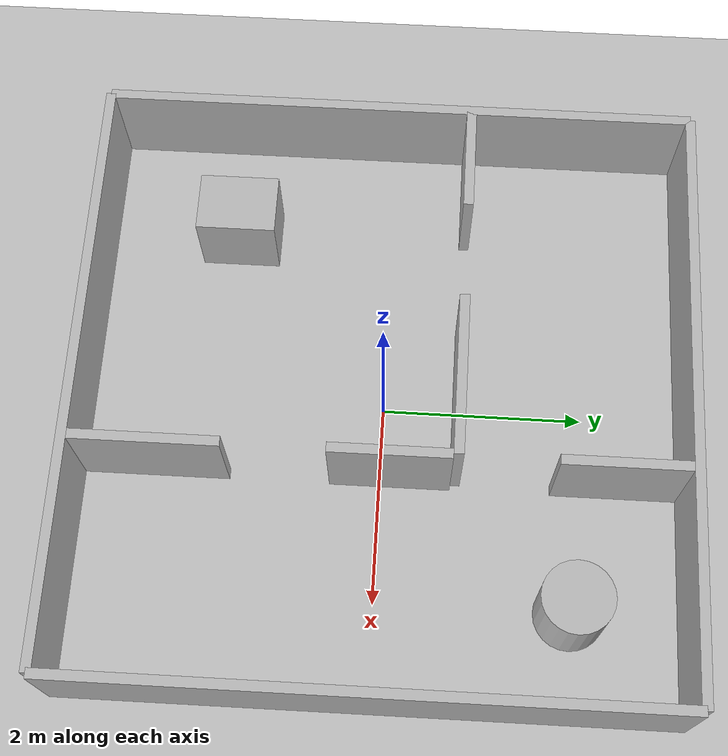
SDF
<?xml version="1.0"?>
<sdf version="1.9">
  <world name="voice_nav_house_world">
    <plugin filename="gz-sim-physics-system" name="gz::sim::systems::Physics" />
    <plugin filename="gz-sim-user-commands-system" name="gz::sim::systems::UserCommands" />
    <plugin filename="gz-sim-scene-broadcaster-system" name="gz::sim::systems::SceneBroadcaster" />
    <plugin filename="gz-sim-sensors-system" name="gz::sim::systems::Sensors">
      <render_engine>ogre2</render_engine>
    </plugin>
    <physics name="default_physics" type="ode">
      <max_step_size>0.001</max_step_size>
      <real_time_update_rate>1000</real_time_update_rate>
    </physics>
    <gravity>0 0 -9.8</gravity>
    <light name="sun" type="directional">
      <cast_shadows>true</cast_shadows><pose>0 0 10 0 0 0</pose>
      <diffuse>0.8 0.8 0.8 1</diffuse><specular>0.2 0.2 0.2 1</specular>
      <attenuation><range>1000</range><constant>0.9</constant><linear>0.01</linear><quadratic>0.001</quadratic></attenuation>
      <direction>-0.5 0.1 -0.9</direction>
    </light>
    <model name="ground"><static>true</static><link name="ground_link">
      <collision name="ground_collision"><geometry><plane><normal>0 0 1</normal><size>8 8</size></plane></geometry></collision>
      <visual name="ground_visual"><geometry><plane><normal>0 0 1</normal><size>8 8</size></plane></geometry><material><ambient>0.65 0.65 0.65 1</ambient><diffuse>0.75 0.75 0.75 1</diffuse></material></visual>
    </link></model>
    <model name="south"><static>true</static><pose>0 -3 0.5 0 0 0</pose><link name="south_link">
      <collision name="south_collision"><geometry><box><size>6.0 0.10 1.0</size></box></geometry></collision>
      <visual name="south_visual"><geometry><box><size>6.0 0.10 1.0</size></box></geometry></visual>
    </link></model>
    <model name="north"><static>true</static><pose>0 3 0.5 0 0 0</pose><link name="north_link">
      <collision name="north_collision"><geometry><box><size>6.0 0.10 1.0</size></box></geometry></collision>
      <visual name="north_visual"><geometry><box><size>6.0 0.10 1.0</size></box></geometry></visual>
    </link></model>
    <model name="west"><static>true</static><pose>-3 0 0.5 0 0 0</pose><link name="west_link">
      <collision name="west_collision"><geometry><box><size>0.10 6.0 1.0</size></box></geometry></collision>
      <visual name="west_visual"><geometry><box><size>0.10 6.0 1.0</size></box></geometry></visual>
    </link></model>
    <model name="east"><static>true</static><pose>3 0 0.5 0 0 0</pose><link name="east_link">
      <collision name="east_collision"><geometry><box><size>0.10 6.0 1.0</size></box></geometry></collision>
      <visual name="east_visual"><geometry><box><size>0.10 6.0 1.0</size></box></geometry></visual>
    </link></model>
    <model name="inner_v_lower"><static>true</static><pose>0.75 -2.25 0.5 0 0 0</pose><link name="inner_v_lower_link">
      <collision name="inner_v_lower_collision"><geometry><box><size>0.10 1.50 1.0</size></box></geometry></collision>
      <visual name="inner_v_lower_visual"><geometry><box><size>0.10 1.50 1.0</size></box></geometry></visual>
    </link></model>
    <model name="inner_v_middle"><static>true</static><pose>0.75 0.10 0.5 0 0 0</pose><link name="inner_v_middle_link">
      <collision name="inner_v_middle_collision"><geometry><box><size>0.10 1.20 1.0</size></box></geometry></collision>
      <visual name="inner_v_middle_visual"><geometry><box><size>0.10 1.20 1.0</size></box></geometry></visual>
    </link></model>
    <model name="inner_v_upper"><static>true</static><pose>0.75 2.35 0.5 0 0 0</pose><link name="inner_v_upper_link">
      <collision name="inner_v_upper_collision"><geometry><box><size>0.10 1.30 1.0</size></box></geometry></collision>
      <visual name="inner_v_upper_visual"><geometry><box><size>0.10 1.30 1.0</size></box></geometry></visual>
    </link></model>
    <model name="inner_h_west"><static>true</static><pose>-2.45 0.75 0.5 0 0 0</pose><link name="inner_h_west_link">
      <collision name="inner_h_west_collision"><geometry><box><size>1.10 0.10 1.0</size></box></geometry></collision>
      <visual name="inner_h_west_visual"><geometry><box><size>1.10 0.10 1.0</size></box></geometry></visual>
    </link></model>
    <model name="inner_h_east"><static>true</static><pose>-0.075 0.75 0.5 0 0 0</pose><link name="inner_h_east_link">
      <collision name="inner_h_east_collision"><geometry><box><size>1.65 0.10 1.0</size></box></geometry></collision>
      <visual name="inner_h_east_visual"><geometry><box><size>1.65 0.10 1.0</size></box></geometry></visual>
    </link></model>
    <model name="lower_left_box"><static>true</static><pose>-1.9 -1.6 0.4 0 0 0</pose><link name="lower_left_box_link">
      <collision name="lower_left_box_collision"><geometry><box><size>0.6 0.8 0.8</size></box></geometry></collision>
      <visual name="lower_left_box_visual"><geometry><box><size>0.6 0.8 0.8</size></box></geometry></visual>
    </link></model>
    <model name="upper_right_cylinder"><static>true</static><pose>2.0 1.9 0.4 0 0 0</pose><link name="upper_right_cylinder_link">
      <collision name="upper_right_cylinder_collision"><geometry><cylinder><radius>0.35</radius><length>0.8</length></cylinder></geometry></collision>
      <visual name="upper_right_cylinder_visual"><geometry><cylinder><radius>0.35</radius><length>0.8</length></cylinder></geometry></visual>
    </link></model>
  </world>
</sdf>
